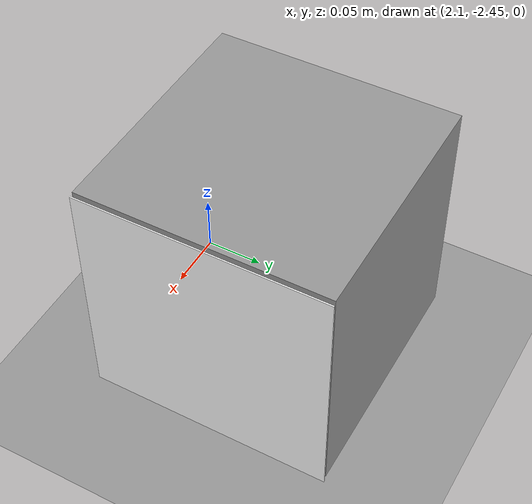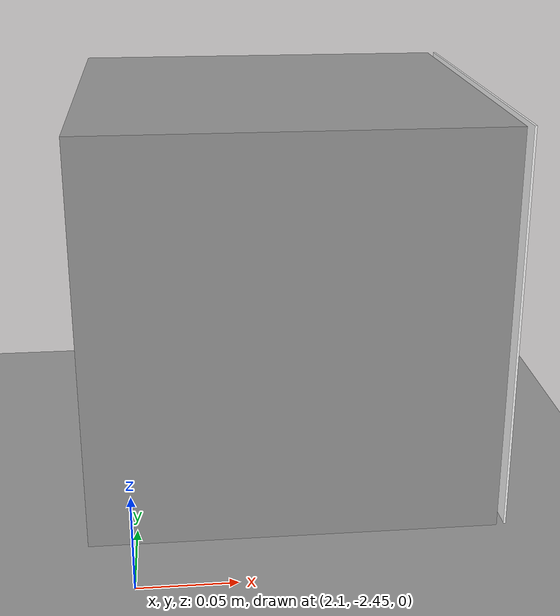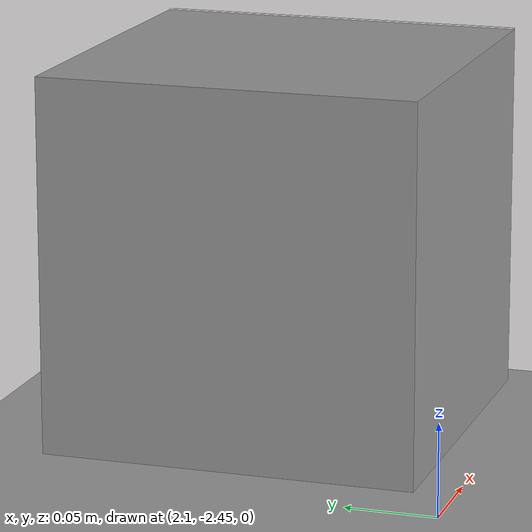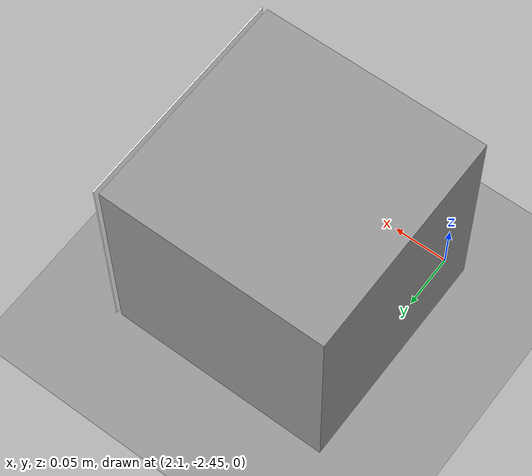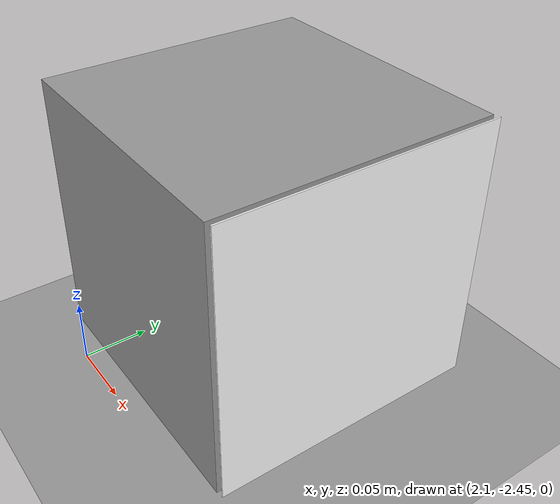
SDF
<sdf version='1.7'>
  <world name='altered_world'>
    <light name='main_light' type='directional'>
      <cast_shadows>1</cast_shadows>
      <pose>0 0 10 0 0 0</pose>
      <diffuse>0.8 0.8 0.8 1</diffuse>
      <specular>0.2 0.2 0.2 1</specular>
      <attenuation>
        <range>1000</range>
        <constant>0.9</constant>
        <linear>0.01</linear>
        <quadratic>0.001</quadratic>
      </attenuation>
      <direction>-0.5 0.1 -0.9</direction>
    </light>

    <model name='base_ground'>
      <static>1</static>
      <link name='ground_link'>
        <collision name='ground_collision'>
          <geometry>
            <plane>
              <normal>0 0 1</normal>
              <size>100 100</size>
            </plane>
          </geometry>
          <surface>
            <contact>
              <collide_bitmask>65535</collide_bitmask>
              <ode/>
            </contact>
            <friction>
              <ode>
                <mu>100</mu>
                <mu2>50</mu2>
              </ode>
            </friction>
          </surface>
          <max_contacts>10</max_contacts>
        </collision>
        <visual name='ground_visual'>
          <cast_shadows>0</cast_shadows>
          <geometry>
            <plane>
              <normal>0 0 1</normal>
              <size>100 100</size>
            </plane>
          </geometry>
          <material>
            <script>
              <uri>file://media/materials/scripts/gazebo.material</uri>
              <name>Gazebo/Grey</name>
            </script>
          </material>
        </visual>
      </link>
    </model>

    <gravity>0 0 -9.8</gravity>
    <magnetic_field>6e-06 2.3e-05 -4.2e-05</magnetic_field>
    <atmosphere type='adiabatic'/>
    <physics type='ode'>
      <max_step_size>0.001</max_step_size>
      <real_time_factor>1</real_time_factor>
      <real_time_update_rate>1000</real_time_update_rate>
    </physics>
    <scene>
      <ambient>0.4 0.4 0.4 1</ambient>
      <background>0.7 0.7 0.7 1</background>
      <shadows>1</shadows>
    </scene>
    <wind/>
    <spherical_coordinates>
      <surface_model>EARTH_WGS84</surface_model>
      <latitude_deg>0</latitude_deg>
      <longitude_deg>0</longitude_deg>
      <elevation>0</elevation>
      <heading_deg>0</heading_deg>
    </spherical_coordinates>

    <!-- Example of one marker model changed -->
    <model name='marker12_cube'>
      <link name='marker_face'>
        <inertial>
          <mass>0.1</mass>
          <inertia>
            <ixx>0</ixx>
            <ixy>0</ixy>
            <ixz>0</ixz>
            <iyy>0</iyy>
            <iyz>0</iyz>
            <izz>0</izz>
          </inertia>
        </inertial>
        <self_collide>1</self_collide>
        <gravity>1</gravity>
        <enable_wind>0</enable_wind>
        <!-- Slightly altered pose -->
        <pose>-0.76 -0.1 0.120005 -0.0155 1.56996 -0.0155</pose>
        <visual name='marker_visual'>
          <geometry>
            <box>
              <!-- Slightly changed thickness -->
              <size>0.2 0.2 0.0011</size>
            </box>
          </geometry>
          <material>
            <script>
              <uri>model://marker12/material/scripts</uri>
              <uri>model://marker12/material/textures</uri>
              <name>Aruco/marker12</name>
            </script>
            <shader type='pixel'>
              <normal_map>__default__</normal_map>
            </shader>
            <ambient>1 1 1 1</ambient>
            <diffuse>1 1 1 1</diffuse>
            <specular>0 0 0 1</specular>
            <emissive>0 0 0 1</emissive>
          </material>
          <transparency>0</transparency>
          <cast_shadows>1</cast_shadows>
        </visual>
        <collision name='marker_collision'>
          <pose>0 0 0 0 0 0</pose>
          <geometry>
            <box>
              <size>0.2 0.2 0.02</size>
            </box>
          </geometry>
          <surface>
            <friction>
              <ode>
                <!-- Slight minor changes in friction to look different -->
                <mu>0.999</mu>
                <mu2>0.999</mu2>
              </ode>
            </friction>
            <bounce>
              <restitution_coefficient>0</restitution_coefficient>
              <threshold>1e6</threshold>
            </bounce>
            <contact>
              <collide_bitmask>1</collide_bitmask>
              <ode>
                <kp>1e13</kp>
                <kd>1</kd>
                <max_vel>0.01</max_vel>
                <min_depth>0</min_depth>
                <soft_cfm>0</soft_cfm>
                <soft_erp>0.2</soft_erp>
              </ode>
            </contact>
          </surface>
        </collision>
      </link>
      <link name='body_link'>
        <inertial>
          <mass>1</mass>
          <inertia>
            <ixx>0.166667</ixx>
            <ixy>0</ixy>
            <ixz>0</ixz>
            <iyy>0.166667</iyy>
            <iyz>0</iyz>
            <izz>0.166667</izz>
          </inertia>
        </inertial>
        <!-- Keep pose almost identical -->
        <pose>-0.8643 -0.1011 0.12 0 0 0</pose>
        <gravity>1</gravity>
        <self_collide>0</self_collide>
        <enable_wind>0</enable_wind>
        <visual name='body_visual'>
          <geometry>
            <box>
              <size>0.2 0.2 0.2</size>
            </box>
          </geometry>
          <material>
            <lighting>1</lighting>
            <script>
              <uri>file://media/materials/scripts/gazebo.material</uri>
              <name>Gazebo/Grey</name>
            </script>
            <shader type='pixel'>
              <normal_map>__default__</normal_map>
            </shader>
            <ambient>0.3 0.3 0.3 1</ambient>
            <diffuse>0.7 0.7 0.7 1</diffuse>
            <specular>0.01 0.01 0.01 1</specular>
            <emissive>0 0 0 1</emissive>
          </material>
          <cast_shadows>1</cast_shadows>
        </visual>
        <collision name='body_collision'>
          <geometry>
            <box>
              <size>0.2 0.2 0.2</size>
            </box>
          </geometry>
          <surface>
            <friction>
              <ode>
                <mu>1</mu>
                <mu2>1</mu2>
              </ode>
            </friction>
            <bounce>
              <restitution_coefficient>0</restitution_coefficient>
              <threshold>1e6</threshold>
            </bounce>
            <contact>
              <collide_bitmask>1</collide_bitmask>
              <ode>
                <kp>1e13</kp>
                <kd>1</kd>
                <max_vel>0.01</max_vel>
                <min_depth>0</min_depth>
                <soft_cfm>0</soft_cfm>
                <soft_erp>0.2</soft_erp>
              </ode>
            </contact>
          </surface>
        </collision>
      </link>
      <joint name='fixed_joint_marker12' type='fixed'>
        <parent>body_link</parent>
        <child>marker_face</child>
        <pose>0 0 0 0 0 0</pose>
        <physics>
          <ode>
            <limit>
              <cfm>0</cfm>
              <erp>0.2</erp>
            </limit>
          </ode>
        </physics>
      </joint>
      <static>0</static>
      <allow_auto_disable>1</allow_auto_disable>
      <!-- Slight tweak in placement to differentiate from original -->
      <pose>3.0425 -2.2417 0 0 0 0</pose>
    </model>

    <!-- Repeat the same pattern of renaming and slight tweaks for all other markers -->

    <gui fullscreen='0'>
      <camera name='user_camera'>
        <!-- Slight camera pose adjustment -->
        <pose>4.79 -4.63 3.20 0.0026 0.557 2.315</pose>
        <view_controller>orbit</view_controller>
        <projection_type>perspective</projection_type>
      </camera>
    </gui>

  </world>
</sdf>
